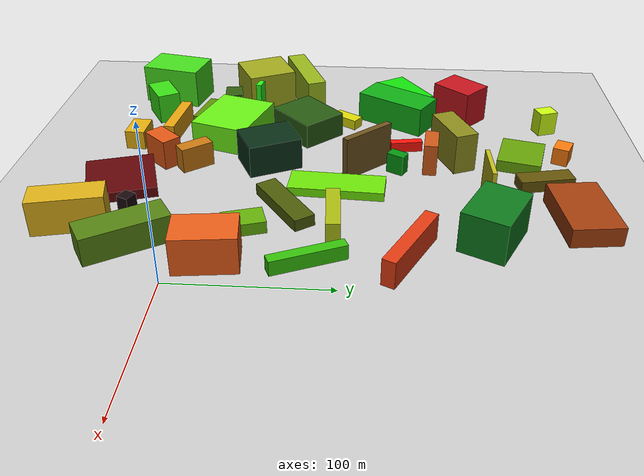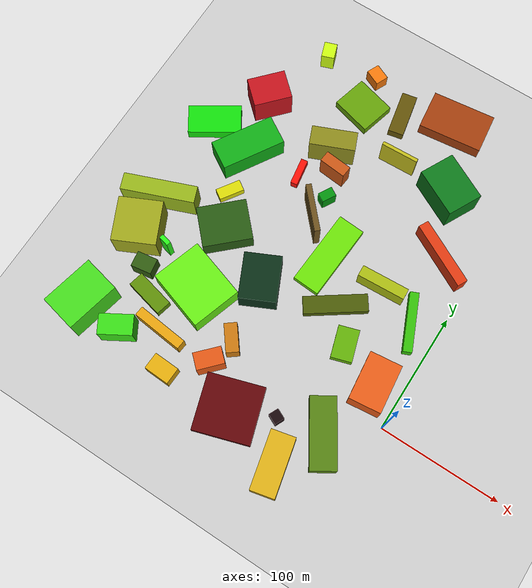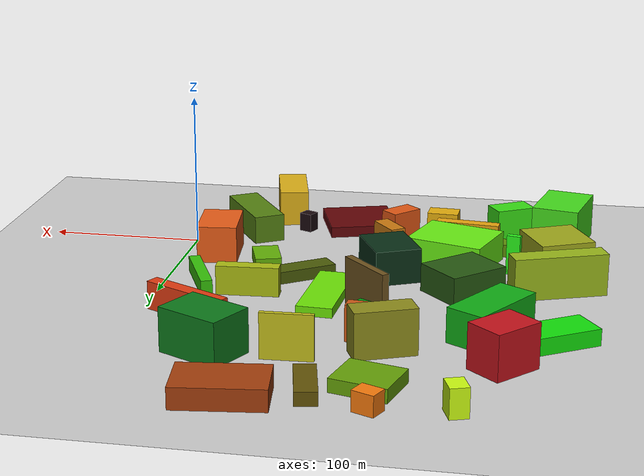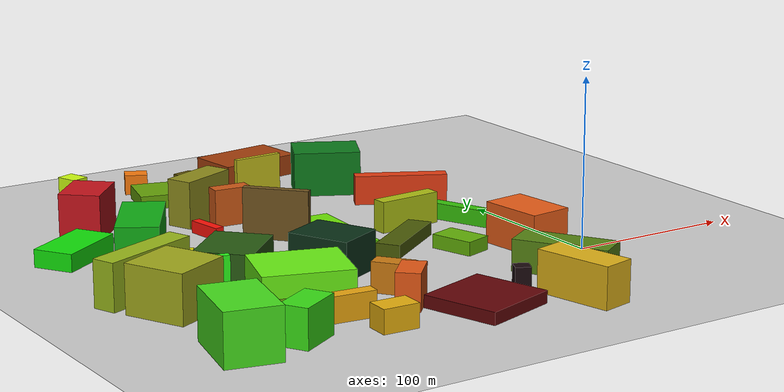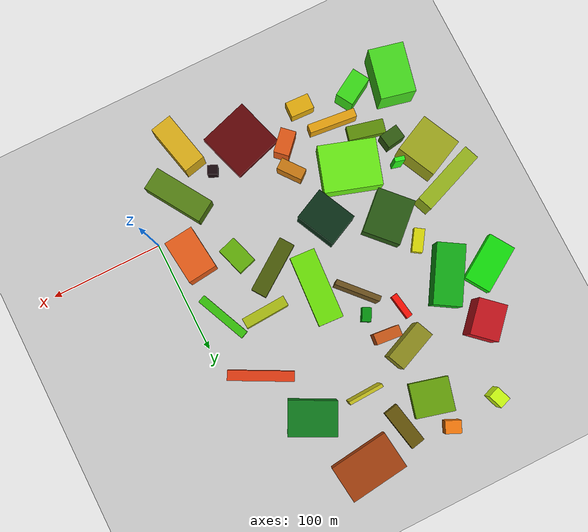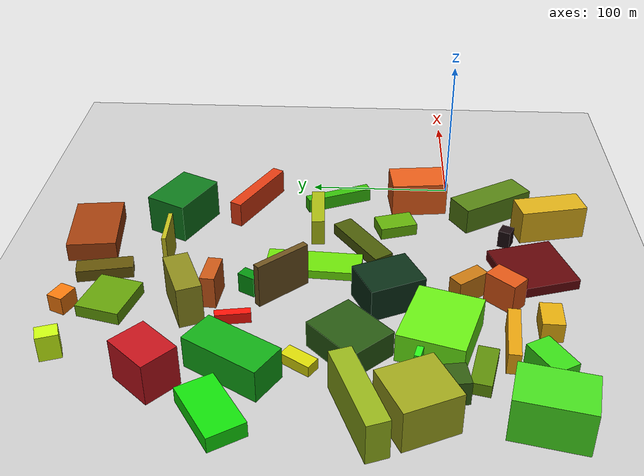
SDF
<sdf version="1.6">
 <world name="default">
  <model name="ground_plane">
   <static>1</static>
   <link name="link">
    <collision name="collision">
     <geometry><plane><normal>0 0 1</normal><size>1090 1090</size></plane></geometry>
     <surface>
      <contact><collide_bitmask>65535</collide_bitmask></contact>
      <friction><ode><mu>100</mu><mu2>50</mu2></ode></friction>
     </surface>
     <max_contacts>100</max_contacts>
    </collision>
    <visual name="visual">
     <cast_shadows>0</cast_shadows>
     <geometry><plane><normal>0 0 1</normal><size>1090 1090</size></plane></geometry>
     <material>
      <script><uri>file://media/materials/scripts/gazebo.material</uri><name>Gazebo/Grey</name></script>
     </material>
    </visual>
   </link>
  </model>
  <model name="box_1">
   <pose>-30.0 140.0 8.917939824284897 0.0 0.0 -2.049125349434252</pose>
   <link name="link">
    <inertial>
     <mass>1</mass>
     <inertia><ixx>1.0</ixx><ixy>0</ixy><ixz>0</ixz><iyy>1.0</iyy><iyz>0</iyz><izz>1.0</izz></inertia>
    </inertial>
    <collision name="collision">
     <geometry><box><size>8.75231158337338 56.50787311186727 17.835879648569794</size></box></geometry>
     <max_contacts>100</max_contacts>
    </collision>
    <visual name="visual">
     <geometry><box><size>8.75231158337338 56.50787311186727 17.835879648569794</size></box></geometry>
     <material>
      <ambient>0.8817718373286103 0.23068205831926336 0.06994462607282272 1</ambient>
      <diffuse>0.8817718373286103 0.23068205831926336 0.06994462607282272 1</diffuse>
     </material>
    </visual>
   </link>
  </model>
  <model name="box_2">
   <pose>-53.0 190.0 13.626873659348835 0.0 0.0 -0.46946448745551506</pose>
   <link name="link">
    <inertial>
     <mass>1</mass>
     <inertia><ixx>1.0</ixx><ixy>0</ixy><ixz>0</ixz><iyy>1.0</iyy><iyz>0</iyz><izz>1.0</izz></inertia>
    </inertial>
    <collision name="collision">
     <geometry><box><size>41.11067537883807 29.60799992010874 27.25374731869767</size></box></geometry>
     <max_contacts>100</max_contacts>
    </collision>
    <visual name="visual">
     <geometry><box><size>41.11067537883807 29.60799992010874 27.25374731869767</size></box></geometry>
     <material>
      <ambient>0.051129619293508344 0.47694808917677767 0.10687744046548106 1</ambient>
      <diffuse>0.051129619293508344 0.47694808917677767 0.10687744046548106 1</diffuse>
     </material>
    </visual>
   </link>
  </model>
  <model name="box_4">
   <pose>-54.0 -68.0 11.932399481538145 0.0 0.0 -1.3448074982335059</pose>
   <link name="link">
    <inertial>
     <mass>1</mass>
     <inertia><ixx>1.0</ixx><ixy>0</ixy><ixz>0</ixz><iyy>1.0</iyy><iyz>0</iyz><izz>1.0</izz></inertia>
    </inertial>
    <collision name="collision">
     <geometry><box><size>46.50718704877159 19.704099781383178 23.86479896307629</size></box></geometry>
     <max_contacts>100</max_contacts>
    </collision>
    <visual name="visual">
     <geometry><box><size>46.50718704877159 19.704099781383178 23.86479896307629</size></box></geometry>
     <material>
      <ambient>0.8671601061280931 0.6890520242899425 0.09358744691402467 1</ambient>
      <diffuse>0.8671601061280931 0.6890520242899425 0.09358744691402467 1</diffuse>
     </material>
    </visual>
   </link>
  </model>
  <model name="box_7">
   <pose>-178.0 14.0 9.835916674045993 0.0 0.0 2.831345659289908</pose>
   <link name="link">
    <inertial>
     <mass>1</mass>
     <inertia><ixx>1.0</ixx><ixy>0</ixy><ixz>0</ixz><iyy>1.0</iyy><iyz>0</iyz><izz>1.0</izz></inertia>
    </inertial>
    <collision name="collision">
     <geometry><box><size>51.042119715471564 41.800423260667934 19.671833348091987</size></box></geometry>
     <max_contacts>100</max_contacts>
    </collision>
    <visual name="visual">
     <geometry><box><size>51.042119715471564 41.800423260667934 19.671833348091987</size></box></geometry>
     <material>
      <ambient>0.41294661639301333 0.9355164949211463 0.07714444450232151 1</ambient>
      <diffuse>0.41294661639301333 0.9355164949211463 0.07714444450232151 1</diffuse>
     </material>
    </visual>
   </link>
  </model>
  <model name="box_11">
   <pose>-35.0 -29.0 9.268477076665707 0.0 0.0 0.5589204189226971</pose>
   <link name="link">
    <inertial>
     <mass>1</mass>
     <inertia><ixx>1.0</ixx><ixy>0</ixy><ixz>0</ixz><iyy>1.0</iyy><iyz>0</iyz><izz>1.0</izz></inertia>
    </inertial>
    <collision name="collision">
     <geometry><box><size>20.73823721204666 55.10534166336652 18.536954153331415</size></box></geometry>
     <max_contacts>100</max_contacts>
    </collision>
    <visual name="visual">
     <geometry><box><size>20.73823721204666 55.10534166336652 18.536954153331415</size></box></geometry>
     <material>
      <ambient>0.33461857477396406 0.5110184405610818 0.07269393785620162 1</ambient>
      <diffuse>0.33461857477396406 0.5110184405610818 0.07269393785620162 1</diffuse>
     </material>
    </visual>
   </link>
  </model>
  <model name="box_18">
   <pose>-105.0 -51.0 3.57855578145893 0.0 0.0 1.8775600879269823</pose>
   <link name="link">
    <inertial>
     <mass>1</mass>
     <inertia><ixx>1.0</ixx><ixy>0</ixy><ixz>0</ixz><iyy>1.0</iyy><iyz>0</iyz><izz>1.0</izz></inertia>
    </inertial>
    <collision name="collision">
     <geometry><box><size>45.590993328448384 46.32370326211496 7.15711156291786</size></box></geometry>
     <max_contacts>100</max_contacts>
    </collision>
    <visual name="visual">
     <geometry><box><size>45.590993328448384 46.32370326211496 7.15711156291786</size></box></geometry>
     <material>
      <ambient>0.3803106719996403 0.016722689660681245 0.028067104168305334 1</ambient>
      <diffuse>0.3803106719996403 0.016722689660681245 0.028067104168305334 1</diffuse>
     </material>
    </visual>
   </link>
  </model>
  <model name="box_24">
   <pose>-106.0 94.0 3.036187016197399 0.0 0.0 1.509970487362236</pose>
   <link name="link">
    <inertial>
     <mass>1</mass>
     <inertia><ixx>1.0</ixx><ixy>0</ixy><ixz>0</ixz><iyy>1.0</iyy><iyz>0</iyz><izz>1.0</izz></inertia>
    </inertial>
    <collision name="collision">
     <geometry><box><size>63.77746449783848 22.556646956915394 6.072374032394798</size></box></geometry>
     <max_contacts>100</max_contacts>
    </collision>
    <visual name="visual">
     <geometry><box><size>63.77746449783848 22.556646956915394 6.072374032394798</size></box></geometry>
     <material>
      <ambient>0.42595351238871304 0.8888574919655837 0.02381323149958744 1</ambient>
      <diffuse>0.42595351238871304 0.8888574919655837 0.02381323149958744 1</diffuse>
     </material>
    </visual>
   </link>
  </model>
  <model name="box_25">
   <pose>-200.0 245.0 8.73518252108833 0.0 0.0 -1.2315014391945382</pose>
   <link name="link">
    <inertial>
     <mass>1</mass>
     <inertia><ixx>1.0</ixx><ixy>0</ixy><ixz>0</ixz><iyy>1.0</iyy><iyz>0</iyz><izz>1.0</izz></inertia>
    </inertial>
    <collision name="collision">
     <geometry><box><size>13.61798697724973 10.92907385401943 17.47036504217666</size></box></geometry>
     <max_contacts>100</max_contacts>
    </collision>
    <visual name="visual">
     <geometry><box><size>13.61798697724973 10.92907385401943 17.47036504217666</size></box></geometry>
     <material>
      <ambient>0.8027560728399181 0.9941952972409885 0.06851123545951632 1</ambient>
      <diffuse>0.8027560728399181 0.9941952972409885 0.06851123545951632 1</diffuse>
     </material>
    </visual>
   </link>
  </model>
  <model name="box_26">
   <pose>-183.0 -29.0 7.3030311145086815 0.0 0.0 -1.6752385755741377</pose>
   <link name="link">
    <inertial>
     <mass>1</mass>
     <inertia><ixx>1.0</ixx><ixy>0</ixy><ixz>0</ixz><iyy>1.0</iyy><iyz>0</iyz><izz>1.0</izz></inertia>
    </inertial>
    <collision name="collision">
     <geometry><box><size>7.795190501975962 42.77033790904829 14.606062229017363</size></box></geometry>
     <max_contacts>100</max_contacts>
    </collision>
    <visual name="visual">
     <geometry><box><size>7.795190501975962 42.77033790904829 14.606062229017363</size></box></geometry>
     <material>
      <ambient>0.9105739579186616 0.6388018349689645 0.05727867540791123 1</ambient>
      <diffuse>0.9105739579186616 0.6388018349689645 0.05727867540791123 1</diffuse>
     </material>
    </visual>
   </link>
  </model>
  <model name="box_27">
   <pose>-210.0 135.0 10.913565074115308 0.0 0.0 -2.118815242038815</pose>
   <link name="link">
    <inertial>
     <mass>1</mass>
     <inertia><ixx>1.0</ixx><ixy>0</ixy><ixz>0</ixz><iyy>1.0</iyy><iyz>0</iyz><izz>1.0</izz></inertia>
    </inertial>
    <collision name="collision">
     <geometry><box><size>53.27998433183104 24.81352422162694 21.827130148230616</size></box></geometry>
     <max_contacts>100</max_contacts>
    </collision>
    <visual name="visual">
     <geometry><box><size>53.27998433183104 24.81352422162694 21.827130148230616</size></box></geometry>
     <material>
      <ambient>0.06403537618711952 0.6784265041522384 0.08559658881659064 1</ambient>
      <diffuse>0.06403537618711952 0.6784265041522384 0.08559658881659064 1</diffuse>
     </material>
    </visual>
   </link>
  </model>
  <model name="box_28">
   <pose>-207.0 -10.0 4.231376765273415 0.0 0.0 1.3373384618519792</pose>
   <link name="link">
    <inertial>
     <mass>1</mass>
     <inertia><ixx>1.0</ixx><ixy>0</ixy><ixz>0</ixz><iyy>1.0</iyy><iyz>0</iyz><izz>1.0</izz></inertia>
    </inertial>
    <collision name="collision">
     <geometry><box><size>12.646845841658484 33.043771107669194 8.46275353054683</size></box></geometry>
     <max_contacts>100</max_contacts>
    </collision>
    <visual name="visual">
     <geometry><box><size>12.646845841658484 33.043771107669194 8.46275353054683</size></box></geometry>
     <material>
      <ambient>0.3685038629019862 0.5590648833946542 0.033187268747242475 1</ambient>
      <diffuse>0.3685038629019862 0.5590648833946542 0.033187268747242475 1</diffuse>
     </material>
    </visual>
   </link>
  </model>
  <model name="box_32">
   <pose>-164.0 141.0 3.691419895267824 0.0 0.0 1.7341141423958093</pose>
   <link name="link">
    <inertial>
     <mass>1</mass>
     <inertia><ixx>1.0</ixx><ixy>0</ixy><ixz>0</ixz><iyy>1.0</iyy><iyz>0</iyz><izz>1.0</izz></inertia>
    </inertial>
    <collision name="collision">
     <geometry><box><size>22.68785350090937 5.627247254712298 7.382839790535648</size></box></geometry>
     <max_contacts>100</max_contacts>
    </collision>
    <visual name="visual">
     <geometry><box><size>22.68785350090937 5.627247254712298 7.382839790535648</size></box></geometry>
     <material>
      <ambient>0.9849376547672133 0.06906106926839817 0.028952312904061365 1</ambient>
      <diffuse>0.9849376547672133 0.06906106926839817 0.028952312904061365 1</diffuse>
     </material>
    </visual>
   </link>
  </model>
  <model name="box_36">
   <pose>-220.0 183.0 13.85566010464334 0.0 0.0 -0.7361736802384703</pose>
   <link name="link">
    <inertial>
     <mass>1</mass>
     <inertia><ixx>1.0</ixx><ixy>0</ixy><ixz>0</ixz><iyy>1.0</iyy><iyz>0</iyz><izz>1.0</izz></inertia>
    </inertial>
    <collision name="collision">
     <geometry><box><size>24.57046278570646 31.705417849427754 27.71132020928668</size></box></geometry>
     <max_contacts>100</max_contacts>
    </collision>
    <visual name="visual">
     <geometry><box><size>24.57046278570646 31.705417849427754 27.71132020928668</size></box></geometry>
     <material>
      <ambient>0.7728028657001005 0.0753444868944394 0.10867184395798697 1</ambient>
      <diffuse>0.7728028657001005 0.0753444868944394 0.10867184395798697 1</diffuse>
     </material>
    </visual>
   </link>
  </model>
  <model name="box_37">
   <pose>-151.0 221.0 4.165720659197231 0.0 0.0 -0.2561089970392796</pose>
   <link name="link">
    <inertial>
     <mass>1</mass>
     <inertia><ixx>1.0</ixx><ixy>0</ixy><ixz>0</ixz><iyy>1.0</iyy><iyz>0</iyz><izz>1.0</izz></inertia>
    </inertial>
    <collision name="collision">
     <geometry><box><size>34.38367381818269 29.691591516559082 8.331441318394463</size></box></geometry>
     <max_contacts>100</max_contacts>
    </collision>
    <visual name="visual">
     <geometry><box><size>34.38367381818269 29.691591516559082 8.331441318394463</size></box></geometry>
     <material>
      <ambient>0.39634216641299447 0.6333936719073255 0.03267231889566456 1</ambient>
      <diffuse>0.39634216641299447 0.6333936719073255 0.03267231889566456 1</diffuse>
     </material>
    </visual>
   </link>
  </model>
  <model name="box_45">
   <pose>-152.0 173.0 14.171544598025019 0.0 0.0 -2.7397283222993107</pose>
   <link name="link">
    <inertial>
     <mass>1</mass>
     <inertia><ixx>1.0</ixx><ixy>0</ixy><ixz>0</ixz><iyy>1.0</iyy><iyz>0</iyz><izz>1.0</izz></inertia>
    </inertial>
    <collision name="collision">
     <geometry><box><size>37.43568224140223 16.063628676971135 28.343089196050038</size></box></geometry>
     <max_contacts>100</max_contacts>
    </collision>
    <visual name="visual">
     <geometry><box><size>37.43568224140223 16.063628676971135 28.343089196050038</size></box></geometry>
     <material>
      <ambient>0.5535732980657141 0.5468362370892589 0.11114936939627466 1</ambient>
      <diffuse>0.5535732980657141 0.5468362370892589 0.11114936939627466 1</diffuse>
     </material>
    </visual>
   </link>
  </model>
  <model name="box_46">
   <pose>-139.0 45.0 11.269886473890583 0.0 0.0 -2.6977788459255243</pose>
   <link name="link">
    <inertial>
     <mass>1</mass>
     <inertia><ixx>1.0</ixx><ixy>0</ixy><ixz>0</ixz><iyy>1.0</iyy><iyz>0</iyz><izz>1.0</izz></inertia>
    </inertial>
    <collision name="collision">
     <geometry><box><size>30.069513264270796 37.47412711637071 22.539772947781167</size></box></geometry>
     <max_contacts>100</max_contacts>
    </collision>
    <visual name="visual">
     <geometry><box><size>30.069513264270796 37.47412711637071 22.539772947781167</size></box></geometry>
     <material>
      <ambient>0.036765469673333384 0.18167781202607658 0.08839126646188693 1</ambient>
      <diffuse>0.036765469673333384 0.18167781202607658 0.08839126646188693 1</diffuse>
     </material>
    </visual>
   </link>
  </model>
  <model name="box_47">
   <pose>-57.0 94.0 9.372648042082945 0.0 0.0 0.05596532934757919</pose>
   <link name="link">
    <inertial>
     <mass>1</mass>
     <inertia><ixx>1.0</ixx><ixy>0</ixy><ixz>0</ixz><iyy>1.0</iyy><iyz>0</iyz><izz>1.0</izz></inertia>
    </inertial>
    <collision name="collision">
     <geometry><box><size>39.60107481729689 8.991441567692949 18.74529608416589</size></box></geometry>
     <max_contacts>100</max_contacts>
    </collision>
    <visual name="visual">
     <geometry><box><size>39.60107481729689 8.991441567692949 18.74529608416589</size></box></geometry>
     <material>
      <ambient>0.6712040335107005 0.7353076082102055 0.07351096503594466 1</ambient>
      <diffuse>0.6712040335107005 0.7353076082102055 0.07351096503594466 1</diffuse>
     </material>
    </visual>
   </link>
  </model>
  <model name="box_49">
   <pose>-77.0 248.0 6.440253767427814 0.0 0.0 -1.4495109600477598</pose>
   <link name="link">
    <inertial>
     <mass>1</mass>
     <inertia><ixx>1.0</ixx><ixy>0</ixy><ixz>0</ixz><iyy>1.0</iyy><iyz>0</iyz><izz>1.0</izz></inertia>
    </inertial>
    <collision name="collision">
     <geometry><box><size>33.057963698718765 52.93129736674424 12.880507534855628</size></box></geometry>
     <max_contacts>100</max_contacts>
    </collision>
    <visual name="visual">
     <geometry><box><size>33.057963698718765 52.93129736674424 12.880507534855628</size></box></geometry>
     <material>
      <ambient>0.6388134072069928 0.2443794480513476 0.050511794254335794 1</ambient>
      <diffuse>0.6388134072069928 0.2443794480513476 0.050511794254335794 1</diffuse>
     </material>
    </visual>
   </link>
  </model>
  <model name="box_51">
   <pose>-211.0 -46.0 11.060492840238734 0.0 0.0 2.10139557618676</pose>
   <link name="link">
    <inertial>
     <mass>1</mass>
     <inertia><ixx>1.0</ixx><ixy>0</ixy><ixz>0</ixz><iyy>1.0</iyy><iyz>0</iyz><izz>1.0</izz></inertia>
    </inertial>
    <collision name="collision">
     <geometry><box><size>16.44758351924334 27.24955697299575 22.120985680477467</size></box></geometry>
     <max_contacts>100</max_contacts>
    </collision>
    <visual name="visual">
     <geometry><box><size>16.44758351924334 27.24955697299575 22.120985680477467</size></box></geometry>
     <material>
      <ambient>0.22415388501119504 0.8707033359837449 0.08674896345285281 1</ambient>
      <diffuse>0.22415388501119504 0.8707033359837449 0.08674896345285281 1</diffuse>
     </material>
    </visual>
   </link>
  </model>
  <model name="box_56">
   <pose>-223.0 7.0 8.03610092690722 0.0 0.0 -2.9850801704133207</pose>
   <link name="link">
    <inertial>
     <mass>1</mass>
     <inertia><ixx>1.0</ixx><ixy>0</ixy><ixz>0</ixz><iyy>1.0</iyy><iyz>0</iyz><izz>1.0</izz></inertia>
    </inertial>
    <collision name="collision">
     <geometry><box><size>16.979872359533694 12.778602154953822 16.07220185381444</size></box></geometry>
     <max_contacts>100</max_contacts>
    </collision>
    <visual name="visual">
     <geometry><box><size>16.979872359533694 12.778602154953822 16.07220185381444</size></box></geometry>
     <material>
      <ambient>0.19192624174665496 0.36234521733194236 0.0630282425639782 1</ambient>
      <diffuse>0.19192624174665496 0.36234521733194236 0.0630282425639782 1</diffuse>
     </material>
    </visual>
   </link>
  </model>
  <model name="box_60">
   <pose>-119.0 232.0 4.078089466994031 0.0 0.0 -2.938527706357722</pose>
   <link name="link">
    <inertial>
     <mass>1</mass>
     <inertia><ixx>1.0</ixx><ixy>0</ixy><ixz>0</ixz><iyy>1.0</iyy><iyz>0</iyz><izz>1.0</izz></inertia>
    </inertial>
    <collision name="collision">
     <geometry><box><size>12.859760201981624 36.95762924405886 8.156178933988063</size></box></geometry>
     <max_contacts>100</max_contacts>
    </collision>
    <visual name="visual">
     <geometry><box><size>12.859760201981624 36.95762924405886 8.156178933988063</size></box></geometry>
     <material>
      <ambient>0.3891946076284525 0.32699626780886637 0.031985015427404166 1</ambient>
      <diffuse>0.3891946076284525 0.32699626780886637 0.031985015427404166 1</diffuse>
     </material>
    </visual>
   </link>
  </model>
  <model name="box_63">
   <pose>-132.0 -6.0 8.691373399730207 0.0 0.0 -0.9127669865479322</pose>
   <link name="link">
    <inertial>
     <mass>1</mass>
     <inertia><ixx>1.0</ixx><ixy>0</ixy><ixz>0</ixz><iyy>1.0</iyy><iyz>0</iyz><izz>1.0</izz></inertia>
    </inertial>
    <collision name="collision">
     <geometry><box><size>23.12194946648444 10.344573865090672 17.382746799460413</size></box></geometry>
     <max_contacts>100</max_contacts>
    </collision>
    <visual name="visual">
     <geometry><box><size>23.12194946648444 10.344573865090672 17.382746799460413</size></box></geometry>
     <material>
      <ambient>0.7922343637645333 0.4757213375954693 0.0681676345076879 1</ambient>
      <diffuse>0.7922343637645333 0.4757213375954693 0.0681676345076879 1</diffuse>
     </material>
    </visual>
   </link>
  </model>
  <model name="box_64">
   <pose>-246.0 -42.0 14.5746909253847 0.0 0.0 -0.22042343004267617</pose>
   <link name="link">
    <inertial>
     <mass>1</mass>
     <inertia><ixx>1.0</ixx><ixy>0</ixy><ixz>0</ixz><iyy>1.0</iyy><iyz>0</iyz><izz>1.0</izz></inertia>
    </inertial>
    <collision name="collision">
     <geometry><box><size>30.96656268455915 44.64055048780418 29.1493818507694</size></box></geometry>
     <max_contacts>100</max_contacts>
    </collision>
    <visual name="visual">
     <geometry><box><size>30.96656268455915 44.64055048780418 29.1493818507694</size></box></geometry>
     <material>
      <ambient>0.27203331513046847 0.866780004693295 0.11431130137556628 1</ambient>
      <diffuse>0.27203331513046847 0.866780004693295 0.11431130137556628 1</diffuse>
     </material>
    </visual>
   </link>
  </model>
  <model name="box_69">
   <pose>-71.0 -37.0 6.246784159069565 0.0 0.0 -2.008563872755172</pose>
   <link name="link">
    <inertial>
     <mass>1</mass>
     <inertia><ixx>1.0</ixx><ixy>0</ixy><ixz>0</ixz><iyy>1.0</iyy><iyz>0</iyz><izz>1.0</izz></inertia>
    </inertial>
    <collision name="collision">
     <geometry><box><size>8.315011473924656 8.902802141477668 12.49356831813913</size></box></geometry>
     <max_contacts>100</max_contacts>
    </collision>
    <visual name="visual">
     <geometry><box><size>8.315011473924656 8.902802141477668 12.49356831813913</size></box></geometry>
     <material>
      <ambient>0.09462459460057704 0.03424694379674198 0.04899438556132992 1</ambient>
      <diffuse>0.09462459460057704 0.03424694379674198 0.04899438556132992 1</diffuse>
     </material>
    </visual>
   </link>
  </model>
  <model name="box_74">
   <pose>-133.0 134.0 7.103199851632416 0.0 0.0 2.622349298829616</pose>
   <link name="link">
    <inertial>
     <mass>1</mass>
     <inertia><ixx>1.0</ixx><ixy>0</ixy><ixz>0</ixz><iyy>1.0</iyy><iyz>0</iyz><izz>1.0</izz></inertia>
    </inertial>
    <collision name="collision">
     <geometry><box><size>7.998867064016279 12.195635743746312 14.206399703264832</size></box></geometry>
     <max_contacts>100</max_contacts>
    </collision>
    <visual name="visual">
     <geometry><box><size>7.998867064016279 12.195635743746312 14.206399703264832</size></box></geometry>
     <material>
      <ambient>0.01616228057421676 0.5781331727350439 0.05571137138535228 1</ambient>
      <diffuse>0.01616228057421676 0.5781331727350439 0.05571137138535228 1</diffuse>
     </material>
    </visual>
   </link>
  </model>
  <model name="box_75">
   <pose>-164.0 -54.0 6.753363604953812 0.0 0.0 -0.04133915122461463</pose>
   <link name="link">
    <inertial>
     <mass>1</mass>
     <inertia><ixx>1.0</ixx><ixy>0</ixy><ixz>0</ixz><iyy>1.0</iyy><iyz>0</iyz><izz>1.0</izz></inertia>
    </inertial>
    <collision name="collision">
     <geometry><box><size>21.111580233564194 13.877491921705184 13.506727209907623</size></box></geometry>
     <max_contacts>100</max_contacts>
    </collision>
    <visual name="visual">
     <geometry><box><size>21.111580233564194 13.877491921705184 13.506727209907623</size></box></geometry>
     <material>
      <ambient>0.8953811252659857 0.6798290529736091 0.05296755768591225 1</ambient>
      <diffuse>0.8953811252659857 0.6798290529736091 0.05296755768591225 1</diffuse>
     </material>
    </visual>
   </link>
  </model>
  <model name="box_76">
   <pose>-23.0 81.0 4.961963991692727 0.0 0.0 -1.160161470785719</pose>
   <link name="link">
    <inertial>
     <mass>1</mass>
     <inertia><ixx>1.0</ixx><ixy>0</ixy><ixz>0</ixz><iyy>1.0</iyy><iyz>0</iyz><izz>1.0</izz></inertia>
    </inertial>
    <collision name="collision">
     <geometry><box><size>48.176345462302876 7.336989280396123 9.923927983385454</size></box></geometry>
     <max_contacts>100</max_contacts>
    </collision>
    <visual name="visual">
     <geometry><box><size>48.176345462302876 7.336989280396123 9.923927983385454</size></box></geometry>
     <material>
      <ambient>0.21082644069372958 0.7529813451453596 0.03891736464072727 1</ambient>
      <diffuse>0.21082644069372958 0.7529813451453596 0.03891736464072727 1</diffuse>
     </material>
    </visual>
   </link>
  </model>
  <model name="box_78">
   <pose>-80.0 62.0 3.9465133216660724 0.0 0.0 -2.5296240685940723</pose>
   <link name="link">
    <inertial>
     <mass>1</mass>
     <inertia><ixx>1.0</ixx><ixy>0</ixy><ixz>0</ixz><iyy>1.0</iyy><iyz>0</iyz><izz>1.0</izz></inertia>
    </inertial>
    <collision name="collision">
     <geometry><box><size>51.32797311882396 14.175911250057744 7.893026643332145</size></box></geometry>
     <max_contacts>100</max_contacts>
    </collision>
    <visual name="visual">
     <geometry><box><size>51.32797311882396 14.175911250057744 7.893026643332145</size></box></geometry>
     <material>
      <ambient>0.29304856717685346 0.35873818535773316 0.030953045660126056 1</ambient>
      <diffuse>0.29304856717685346 0.35873818535773316 0.030953045660126056 1</diffuse>
     </material>
    </visual>
   </link>
  </model>
  <model name="box_88">
   <pose>-188.0 68.0 8.997108333719114 0.0 0.0 0.7551058511117291</pose>
   <link name="link">
    <inertial>
     <mass>1</mass>
     <inertia><ixx>1.0</ixx><ixy>0</ixy><ixz>0</ixz><iyy>1.0</iyy><iyz>0</iyz><izz>1.0</izz></inertia>
    </inertial>
    <collision name="collision">
     <geometry><box><size>40.441869282041495 33.64125789160992 17.994216667438227</size></box></geometry>
     <max_contacts>100</max_contacts>
    </collision>
    <visual name="visual">
     <geometry><box><size>40.441869282041495 33.64125789160992 17.994216667438227</size></box></geometry>
     <material>
      <ambient>0.1539748627656613 0.3504296735840874 0.07056555555858128 1</ambient>
      <diffuse>0.1539748627656613 0.3504296735840874 0.07056555555858128 1</diffuse>
     </material>
    </visual>
   </link>
  </model>
  <model name="box_96">
   <pose>-22.0 23.0 12.178342814601573 0.0 0.0 -3.031311934242622</pose>
   <link name="link">
    <inertial>
     <mass>1</mass>
     <inertia><ixx>1.0</ixx><ixy>0</ixy><ixz>0</ixz><iyy>1.0</iyy><iyz>0</iyz><izz>1.0</izz></inertia>
    </inertial>
    <collision name="collision">
     <geometry><box><size>26.255728971217202 39.27247494337708 24.356685629203145</size></box></geometry>
     <max_contacts>100</max_contacts>
    </collision>
    <visual name="visual">
     <geometry><box><size>26.255728971217202 39.27247494337708 24.356685629203145</size></box></geometry>
     <material>
      <ambient>0.9105555077923427 0.3643748513417223 0.0955164142321692 1</ambient>
      <diffuse>0.9105555077923427 0.3643748513417223 0.0955164142321692 1</diffuse>
     </material>
    </visual>
   </link>
  </model>
  <model name="box_98">
   <pose>-140.0 157.0 11.242073145942403 0.0 0.0 3.0450133666720762</pose>
   <link name="link">
    <inertial>
     <mass>1</mass>
     <inertia><ixx>1.0</ixx><ixy>0</ixy><ixz>0</ixz><iyy>1.0</iyy><iyz>0</iyz><izz>1.0</izz></inertia>
    </inertial>
    <collision name="collision">
     <geometry><box><size>22.676357466086603 9.419960572781127 22.484146291884805</size></box></geometry>
     <max_contacts>100</max_contacts>
    </collision>
    <visual name="visual">
     <geometry><box><size>22.676357466086603 9.419960572781127 22.484146291884805</size></box></geometry>
     <material>
      <ambient>0.7967917172608475 0.3441629299687601 0.08817312271327375 1</ambient>
      <diffuse>0.7967917172608475 0.3441629299687601 0.08817312271327375 1</diffuse>
     </material>
    </visual>
   </link>
  </model>
  <model name="box_99">
   <pose>-248.0 142.0 5.215899567763283 0.0 0.0 -2.5714390103188887</pose>
   <link name="link">
    <inertial>
     <mass>1</mass>
     <inertia><ixx>1.0</ixx><ixy>0</ixy><ixz>0</ixz><iyy>1.0</iyy><iyz>0</iyz><izz>1.0</izz></inertia>
    </inertial>
    <collision name="collision">
     <geometry><box><size>44.08911822333089 24.12466281267875 10.431799135526566</size></box></geometry>
     <max_contacts>100</max_contacts>
    </collision>
    <visual name="visual">
     <geometry><box><size>44.08911822333089 24.12466281267875 10.431799135526566</size></box></geometry>
     <material>
      <ambient>0.07150638692058875 0.8778771533224196 0.04090901621775124 1</ambient>
      <diffuse>0.07150638692058875 0.8778771533224196 0.04090901621775124 1</diffuse>
     </material>
    </visual>
   </link>
  </model>
  <model name="box_100">
   <pose>-244.0 30.0 14.062657079517829 0.0 0.0 0.44600649560308053</pose>
   <link name="link">
    <inertial>
     <mass>1</mass>
     <inertia><ixx>1.0</ixx><ixy>0</ixy><ixz>0</ixz><iyy>1.0</iyy><iyz>0</iyz><izz>1.0</izz></inertia>
    </inertial>
    <collision name="collision">
     <geometry><box><size>35.83467993163497 36.56512309566214 28.125314159035657</size></box></geometry>
     <max_contacts>100</max_contacts>
    </collision>
    <visual name="visual">
     <geometry><box><size>35.83467993163497 36.56512309566214 28.125314159035657</size></box></geometry>
     <material>
      <ambient>0.6288887226641986 0.6585125020741028 0.11029534964327709 1</ambient>
      <diffuse>0.6288887226641986 0.6585125020741028 0.11029534964327709 1</diffuse>
     </material>
    </visual>
   </link>
  </model>
  <model name="box_104">
   <pose>-203.0 97.0 3.7032402877974966 0.0 0.0 2.5569084934024384</pose>
   <link name="link">
    <inertial>
     <mass>1</mass>
     <inertia><ixx>1.0</ixx><ixy>0</ixy><ixz>0</ixz><iyy>1.0</iyy><iyz>0</iyz><izz>1.0</izz></inertia>
    </inertial>
    <collision name="collision">
     <geometry><box><size>9.386152801949198 20.867195162646425 7.406480575594993</size></box></geometry>
     <max_contacts>100</max_contacts>
    </collision>
    <visual name="visual">
     <geometry><box><size>9.386152801949198 20.867195162646425 7.406480575594993</size></box></geometry>
     <material>
      <ambient>0.8609859848173351 0.8534062605564248 0.029045021865078405 1</ambient>
      <diffuse>0.8609859848173351 0.8534062605564248 0.029045021865078405 1</diffuse>
     </material>
    </visual>
   </link>
  </model>
  <model name="box_109">
   <pose>-134.0 113.0 15.163129548287321 0.0 0.0 -0.8290072397272706</pose>
   <link name="link">
    <inertial>
     <mass>1</mass>
     <inertia><ixx>1.0</ixx><ixy>0</ixy><ixz>0</ixz><iyy>1.0</iyy><iyz>0</iyz><izz>1.0</izz></inertia>
    </inertial>
    <collision name="collision">
     <geometry><box><size>39.51435576579994 4.660842093627279 30.326259096574642</size></box></geometry>
     <max_contacts>100</max_contacts>
    </collision>
    <visual name="visual">
     <geometry><box><size>39.51435576579994 4.660842093627279 30.326259096574642</size></box></geometry>
     <material>
      <ambient>0.4299075572348974 0.3221891894710509 0.11892650626107702 1</ambient>
      <diffuse>0.4299075572348974 0.3221891894710509 0.11892650626107702 1</diffuse>
     </material>
    </visual>
   </link>
  </model>
  <model name="box_112">
   <pose>-57.0 39.0 4.110158033914322 0.0 0.0 0.3034130980399828</pose>
   <link name="link">
    <inertial>
     <mass>1</mass>
     <inertia><ixx>1.0</ixx><ixy>0</ixy><ixz>0</ixz><iyy>1.0</iyy><iyz>0</iyz><izz>1.0</izz></inertia>
    </inertial>
    <collision name="collision">
     <geometry><box><size>17.111107710292252 26.262266306813736 8.220316067828644</size></box></geometry>
     <max_contacts>100</max_contacts>
    </collision>
    <visual name="visual">
     <geometry><box><size>17.111107710292252 26.262266306813736 8.220316067828644</size></box></geometry>
     <material>
      <ambient>0.38704316439707986 0.6903300750314914 0.032236533599328016 1</ambient>
      <diffuse>0.38704316439707986 0.6903300750314914 0.032236533599328016 1</diffuse>
     </material>
    </visual>
   </link>
  </model>
  <model name="box_113">
   <pose>-155.0 250.0 6.156640383488637 0.0 0.0 1.1487950939919638</pose>
   <link name="link">
    <inertial>
     <mass>1</mass>
     <inertia><ixx>1.0</ixx><ixy>0</ixy><ixz>0</ixz><iyy>1.0</iyy><iyz>0</iyz><izz>1.0</izz></inertia>
    </inertial>
    <collision name="collision">
     <geometry><box><size>10.970990034235848 13.839648574198153 12.313280766977273</size></box></geometry>
     <max_contacts>100</max_contacts>
    </collision>
    <visual name="visual">
     <geometry><box><size>10.970990034235848 13.839648574198153 12.313280766977273</size></box></geometry>
     <material>
      <ambient>0.9690089082621698 0.47846873595042705 0.04828737555677362 1</ambient>
      <diffuse>0.9690089082621698 0.47846873595042705 0.04828737555677362 1</diffuse>
     </material>
    </visual>
   </link>
  </model>
  <model name="box_115">
   <pose>-246.0 62.0 13.491167431566458 0.0 0.0 -1.20140908090504</pose>
   <link name="link">
    <inertial>
     <mass>1</mass>
     <inertia><ixx>1.0</ixx><ixy>0</ixy><ixz>0</ixz><iyy>1.0</iyy><iyz>0</iyz><izz>1.0</izz></inertia>
    </inertial>
    <collision name="collision">
     <geometry><box><size>13.98360218868611 60.200546262310795 26.982334863132916</size></box></geometry>
     <max_contacts>100</max_contacts>
    </collision>
    <visual name="visual">
     <geometry><box><size>13.98360218868611 60.200546262310795 26.982334863132916</size></box></geometry>
     <material>
      <ambient>0.5949797829876834 0.7129645709460909 0.10581307789463888 1</ambient>
      <diffuse>0.5949797829876834 0.7129645709460909 0.10581307789463888 1</diffuse>
     </material>
    </visual>
   </link>
  </model>
  <model name="box_117">
   <pose>-101.0 192.0 13.928469013594412 0.0 0.0 -3.1015399841016635</pose>
   <link name="link">
    <inertial>
     <mass>1</mass>
     <inertia><ixx>1.0</ixx><ixy>0</ixy><ixz>0</ixz><iyy>1.0</iyy><iyz>0</iyz><izz>1.0</izz></inertia>
    </inertial>
    <collision name="collision">
     <geometry><box><size>31.039785911990105 2.86582942245716 27.856938027188825</size></box></geometry>
     <max_contacts>100</max_contacts>
    </collision>
    <visual name="visual">
     <geometry><box><size>31.039785911990105 2.86582942245716 27.856938027188825</size></box></geometry>
     <material>
      <ambient>0.7636293743481749 0.7404651169183253 0.1092428942242699 1</ambient>
      <diffuse>0.7636293743481749 0.7404651169183253 0.1092428942242699 1</diffuse>
     </material>
    </visual>
   </link>
  </model>
  <model name="box_118">
   <pose>-137.0 -29.0 10.519147257309424 0.0 0.0 2.3919951808484754</pose>
   <link name="link">
    <inertial>
     <mass>1</mass>
     <inertia><ixx>1.0</ixx><ixy>0</ixy><ixz>0</ixz><iyy>1.0</iyy><iyz>0</iyz><izz>1.0</izz></inertia>
    </inertial>
    <collision name="collision">
     <geometry><box><size>13.693209121008039 22.267721837756433 21.038294514618848</size></box></geometry>
     <max_contacts>100</max_contacts>
    </collision>
    <visual name="visual">
     <geometry><box><size>13.693209121008039 22.267721837756433 21.038294514618848</size></box></geometry>
     <material>
      <ambient>0.8871090734996654 0.34224175428330805 0.08250311574360332 1</ambient>
      <diffuse>0.8871090734996654 0.34224175428330805 0.08250311574360332 1</diffuse>
     </material>
    </visual>
   </link>
  </model>
  <model name="box_122">
   <pose>-217.0 29.0 13.079659436699421 0.0 0.0 2.902953596882108</pose>
   <link name="link">
    <inertial>
     <mass>1</mass>
     <inertia><ixx>1.0</ixx><ixy>0</ixy><ixz>0</ixz><iyy>1.0</iyy><iyz>0</iyz><izz>1.0</izz></inertia>
    </inertial>
    <collision name="collision">
     <geometry><box><size>8.815636306124762 3.878173580856383 26.159318873398842</size></box></geometry>
     <max_contacts>100</max_contacts>
    </collision>
    <visual name="visual">
     <geometry><box><size>8.815636306124762 3.878173580856383 26.159318873398842</size></box></geometry>
     <material>
      <ambient>0.16413628956517645 0.9709232204809147 0.10258556420940722 1</ambient>
      <diffuse>0.16413628956517645 0.9709232204809147 0.10258556420940722 1</diffuse>
     </material>
    </visual>
   </link>
  </model>
 </world>
</sdf>
